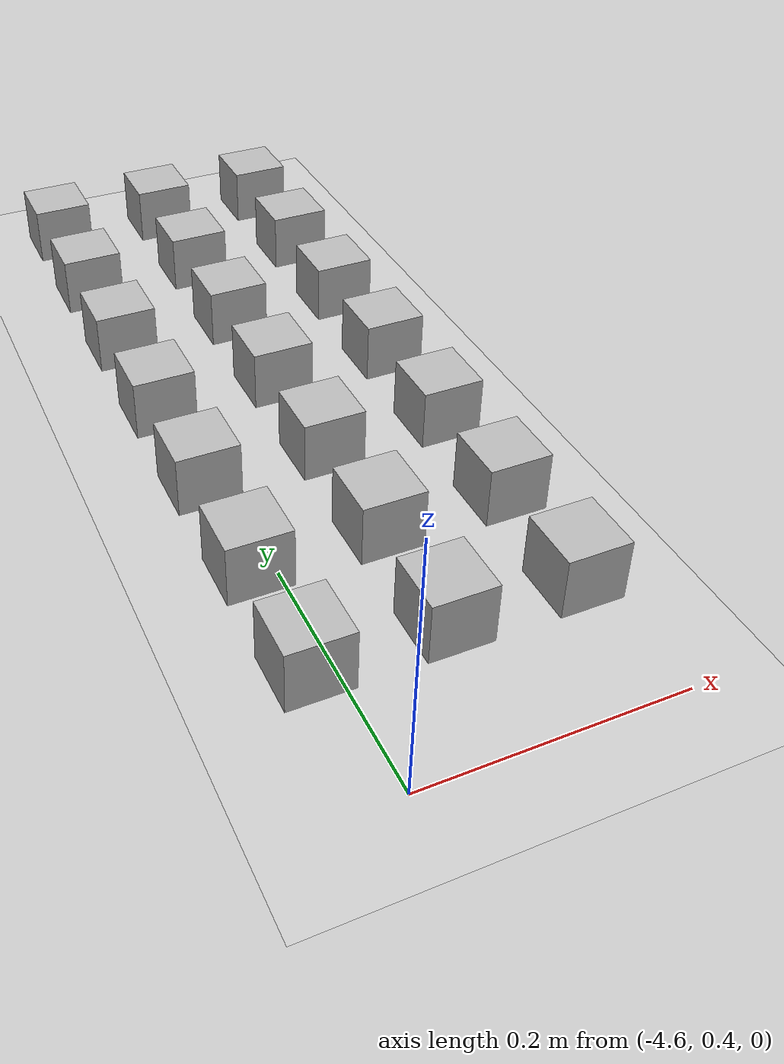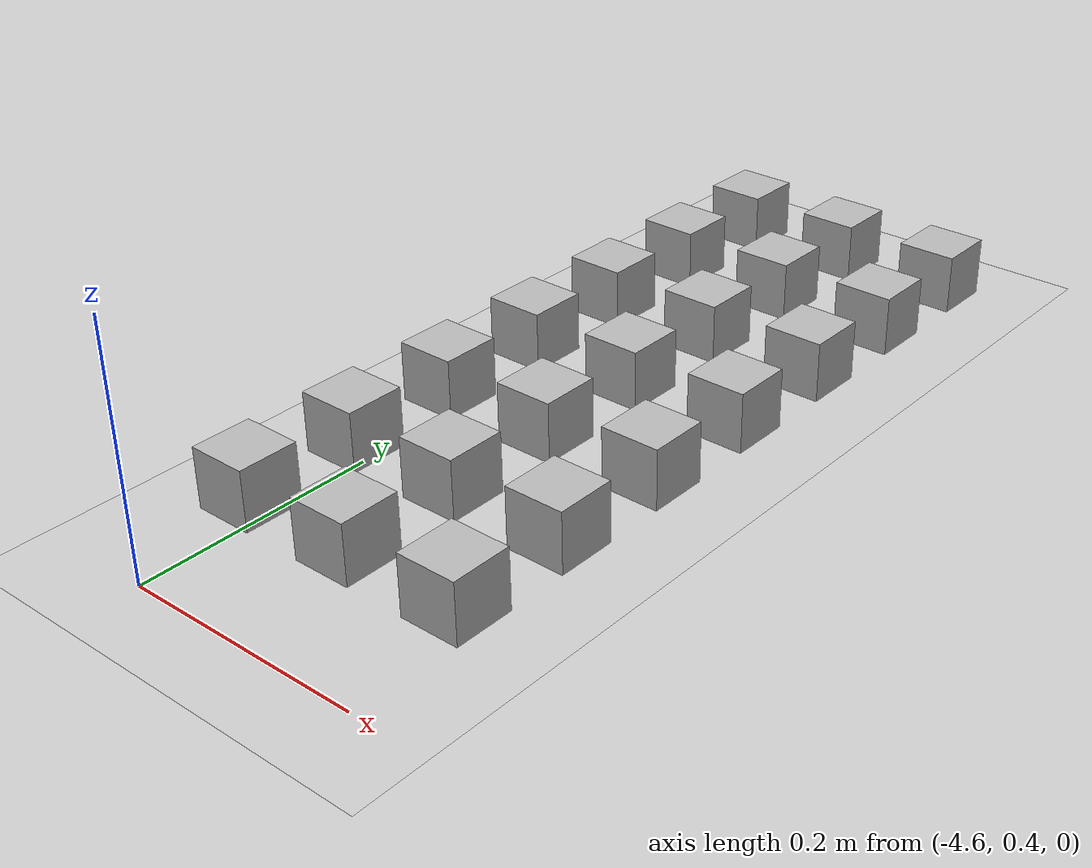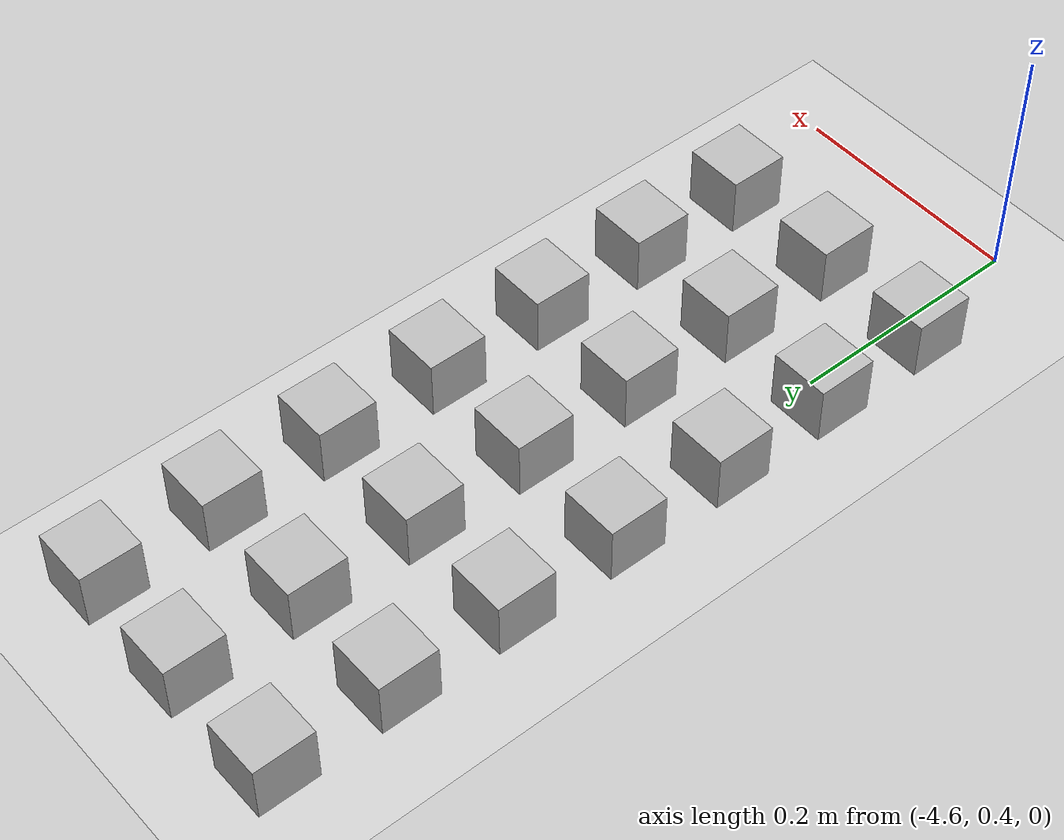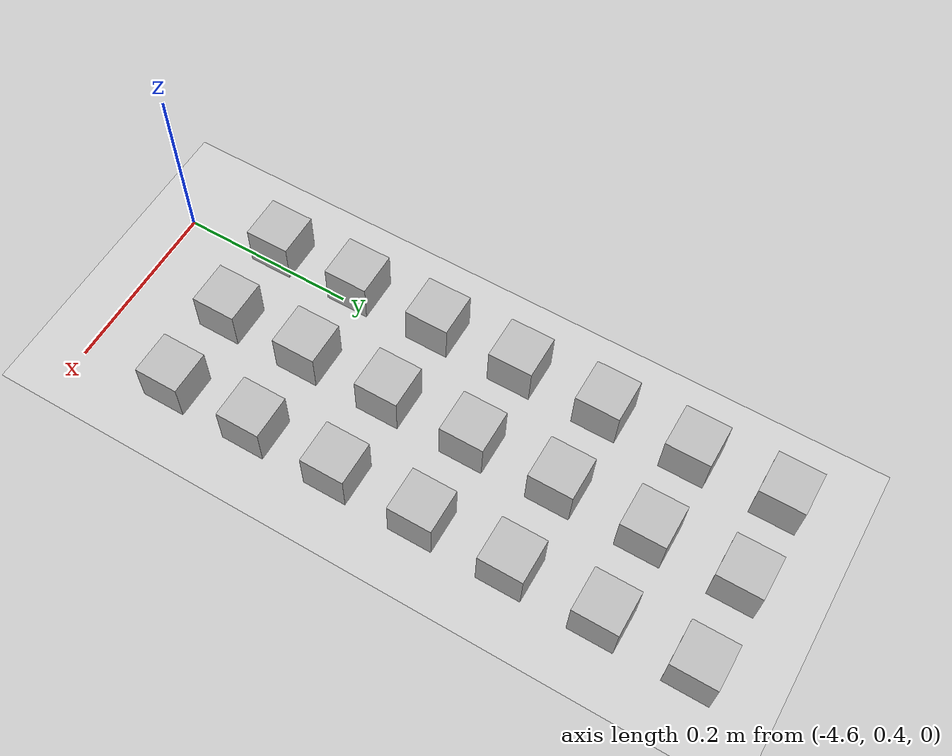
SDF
<sdf version="1.6">
 <world name="default">
  <model name="ground_plane">
   <static>1</static>
   <link name="link">
    <collision name="collision">
     <geometry><plane><normal>0 0 1</normal><size>100 100</size></plane></geometry>
     <surface><friction><ode><mu>100</mu><mu2>50</mu2></ode></friction></surface>
    </collision>
    <visual name="visual">
     <cast_shadows>0</cast_shadows>
     <geometry><plane><normal>0 0 1</normal><size>100 100</size></plane></geometry>
     <material>
      <script><uri>file://media/materials/scripts/gazebo.material</uri><name>Gazebo/Grey</name></script>
     </material>
    </visual>
   </link>
  </model>
  <model name="at0">
   <static>0</static>
   <link name="link">
    <inertial>
     <mass>0.01</mass>
     <inertia><ixx>4e-05</ixx><ixy>0</ixy><ixz>0</ixz><iyy>4e-05</iyy><iyz>0</iyz><izz>4e-05</izz></inertia>
    </inertial>
    <visual name="visual">
     <geometry><box><size>0.05 0.05 0.05</size></box></geometry>
     <material>
      <script>
       <uri>model://at0/materials/scripts</uri>
       <uri>model://at0/materials/textures</uri>
       <name>at0/Diffuse</name>
      </script>
     </material>
    </visual>
    <collision name="collision">
     <geometry><box><size>0.05 0.05 0.05</size></box></geometry>
     <surface><friction><ode><mu>0.8</mu><mu2>0.7</mu2></ode></friction></surface>
    </collision>
   </link>
   <pose>-4.61833 0.509652 0.025 0 -0 0</pose>
  </model>
  <model name="at1">
   <static>0</static>
   <link name="link">
    <inertial>
     <mass>0.01</mass>
     <inertia><ixx>4e-05</ixx><ixy>0</ixy><ixz>0</ixz><iyy>4e-05</iyy><iyz>0</iyz><izz>4e-05</izz></inertia>
    </inertial>
    <visual name="visual">
     <geometry><box><size>0.05 0.05 0.05</size></box></geometry>
     <material>
      <script>
       <uri>model://at0/materials/scripts</uri>
       <uri>model://at0/materials/textures</uri>
       <name>at0/Diffuse</name>
      </script>
     </material>
    </visual>
    <collision name="collision">
     <geometry><box><size>0.05 0.05 0.05</size></box></geometry>
     <surface><friction><ode><mu>0.8</mu><mu2>0.7</mu2></ode></friction></surface>
    </collision>
   </link>
   <pose>-4.51833 0.509652 0.025 0 -0 0</pose>
  </model>
  <model name="at2">
   <static>0</static>
   <link name="link">
    <inertial>
     <mass>0.01</mass>
     <inertia><ixx>4e-05</ixx><ixy>0</ixy><ixz>0</ixz><iyy>4e-05</iyy><iyz>0</iyz><izz>4e-05</izz></inertia>
    </inertial>
    <visual name="visual">
     <geometry><box><size>0.05 0.05 0.05</size></box></geometry>
     <material>
      <script>
       <uri>model://at0/materials/scripts</uri>
       <uri>model://at0/materials/textures</uri>
       <name>at0/Diffuse</name>
      </script>
     </material>
    </visual>
    <collision name="collision">
     <geometry><box><size>0.05 0.05 0.05</size></box></geometry>
     <surface><friction><ode><mu>0.8</mu><mu2>0.7</mu2></ode></friction></surface>
    </collision>
   </link>
   <pose>-4.41833 0.509652 0.025 0 -0 0</pose>
  </model>
  <model name="at4">
   <static>0</static>
   <link name="link">
    <inertial>
     <mass>0.01</mass>
     <inertia><ixx>4e-05</ixx><ixy>0</ixy><ixz>0</ixz><iyy>4e-05</iyy><iyz>0</iyz><izz>4e-05</izz></inertia>
    </inertial>
    <visual name="visual">
     <geometry><box><size>0.05 0.05 0.05</size></box></geometry>
     <material>
      <script>
       <uri>model://at0/materials/scripts</uri>
       <uri>model://at0/materials/textures</uri>
       <name>at0/Diffuse</name>
      </script>
     </material>
    </visual>
    <collision name="collision">
     <geometry><box><size>0.05 0.05 0.05</size></box></geometry>
     <surface><friction><ode><mu>0.8</mu><mu2>0.7</mu2></ode></friction></surface>
    </collision>
   </link>
   <pose>-4.61833 0.609652 0.025 0 -0 0</pose>
  </model>
  <model name="at5">
   <static>0</static>
   <link name="link">
    <inertial>
     <mass>0.01</mass>
     <inertia><ixx>4e-05</ixx><ixy>0</ixy><ixz>0</ixz><iyy>4e-05</iyy><iyz>0</iyz><izz>4e-05</izz></inertia>
    </inertial>
    <visual name="visual">
     <geometry><box><size>0.05 0.05 0.05</size></box></geometry>
     <material>
      <script>
       <uri>model://at0/materials/scripts</uri>
       <uri>model://at0/materials/textures</uri>
       <name>at0/Diffuse</name>
      </script>
     </material>
    </visual>
    <collision name="collision">
     <geometry><box><size>0.05 0.05 0.05</size></box></geometry>
     <surface><friction><ode><mu>0.8</mu><mu2>0.7</mu2></ode></friction></surface>
    </collision>
   </link>
   <pose>-4.51833 0.609652 0.025 0 -0 0</pose>
  </model>
  <model name="at6">
   <static>0</static>
   <link name="link">
    <inertial>
     <mass>0.01</mass>
     <inertia><ixx>4e-05</ixx><ixy>0</ixy><ixz>0</ixz><iyy>4e-05</iyy><iyz>0</iyz><izz>4e-05</izz></inertia>
    </inertial>
    <visual name="visual">
     <geometry><box><size>0.05 0.05 0.05</size></box></geometry>
     <material>
      <script>
       <uri>model://at0/materials/scripts</uri>
       <uri>model://at0/materials/textures</uri>
       <name>at0/Diffuse</name>
      </script>
     </material>
    </visual>
    <collision name="collision">
     <geometry><box><size>0.05 0.05 0.05</size></box></geometry>
     <surface><friction><ode><mu>0.8</mu><mu2>0.7</mu2></ode></friction></surface>
    </collision>
   </link>
   <pose>-4.41833 0.609652 0.025 0 -0 0</pose>
  </model>
  <model name="at8">
   <static>0</static>
   <link name="link">
    <inertial>
     <mass>0.01</mass>
     <inertia><ixx>4e-05</ixx><ixy>0</ixy><ixz>0</ixz><iyy>4e-05</iyy><iyz>0</iyz><izz>4e-05</izz></inertia>
    </inertial>
    <visual name="visual">
     <geometry><box><size>0.05 0.05 0.05</size></box></geometry>
     <material>
      <script>
       <uri>model://at0/materials/scripts</uri>
       <uri>model://at0/materials/textures</uri>
       <name>at0/Diffuse</name>
      </script>
     </material>
    </visual>
    <collision name="collision">
     <geometry><box><size>0.05 0.05 0.05</size></box></geometry>
     <surface><friction><ode><mu>0.8</mu><mu2>0.7</mu2></ode></friction></surface>
    </collision>
   </link>
   <pose>-4.61833 0.709652 0.025 0 -0 0</pose>
  </model>
  <model name="at9">
   <static>0</static>
   <link name="link">
    <inertial>
     <mass>0.01</mass>
     <inertia><ixx>4e-05</ixx><ixy>0</ixy><ixz>0</ixz><iyy>4e-05</iyy><iyz>0</iyz><izz>4e-05</izz></inertia>
    </inertial>
    <visual name="visual">
     <geometry><box><size>0.05 0.05 0.05</size></box></geometry>
     <material>
      <script>
       <uri>model://at0/materials/scripts</uri>
       <uri>model://at0/materials/textures</uri>
       <name>at0/Diffuse</name>
      </script>
     </material>
    </visual>
    <collision name="collision">
     <geometry><box><size>0.05 0.05 0.05</size></box></geometry>
     <surface><friction><ode><mu>0.8</mu><mu2>0.7</mu2></ode></friction></surface>
    </collision>
   </link>
   <pose>-4.51833 0.709652 0.025 0 -0 0</pose>
  </model>
  <model name="at10">
   <static>0</static>
   <link name="link">
    <inertial>
     <mass>0.01</mass>
     <inertia><ixx>4e-05</ixx><ixy>0</ixy><ixz>0</ixz><iyy>4e-05</iyy><iyz>0</iyz><izz>4e-05</izz></inertia>
    </inertial>
    <visual name="visual">
     <geometry><box><size>0.05 0.05 0.05</size></box></geometry>
     <material>
      <script>
       <uri>model://at0/materials/scripts</uri>
       <uri>model://at0/materials/textures</uri>
       <name>at0/Diffuse</name>
      </script>
     </material>
    </visual>
    <collision name="collision">
     <geometry><box><size>0.05 0.05 0.05</size></box></geometry>
     <surface><friction><ode><mu>0.8</mu><mu2>0.7</mu2></ode></friction></surface>
    </collision>
   </link>
   <pose>-4.41833 0.709652 0.025 0 -0 0</pose>
  </model>
  <model name="at12">
   <static>0</static>
   <link name="link">
    <inertial>
     <mass>0.01</mass>
     <inertia><ixx>4e-05</ixx><ixy>0</ixy><ixz>0</ixz><iyy>4e-05</iyy><iyz>0</iyz><izz>4e-05</izz></inertia>
    </inertial>
    <visual name="visual">
     <geometry><box><size>0.05 0.05 0.05</size></box></geometry>
     <material>
      <script>
       <uri>model://at0/materials/scripts</uri>
       <uri>model://at0/materials/textures</uri>
       <name>at0/Diffuse</name>
      </script>
     </material>
    </visual>
    <collision name="collision">
     <geometry><box><size>0.05 0.05 0.05</size></box></geometry>
     <surface><friction><ode><mu>0.8</mu><mu2>0.7</mu2></ode></friction></surface>
    </collision>
   </link>
   <pose>-4.61833 0.809652 0.025 0 -0 0</pose>
  </model>
  <model name="at13">
   <static>0</static>
   <link name="link">
    <inertial>
     <mass>0.01</mass>
     <inertia><ixx>4e-05</ixx><ixy>0</ixy><ixz>0</ixz><iyy>4e-05</iyy><iyz>0</iyz><izz>4e-05</izz></inertia>
    </inertial>
    <visual name="visual">
     <geometry><box><size>0.05 0.05 0.05</size></box></geometry>
     <material>
      <script>
       <uri>model://at0/materials/scripts</uri>
       <uri>model://at0/materials/textures</uri>
       <name>at0/Diffuse</name>
      </script>
     </material>
    </visual>
    <collision name="collision">
     <geometry><box><size>0.05 0.05 0.05</size></box></geometry>
     <surface><friction><ode><mu>0.8</mu><mu2>0.7</mu2></ode></friction></surface>
    </collision>
   </link>
   <pose>-4.51833 0.809652 0.025 0 -0 0</pose>
  </model>
  <model name="at14">
   <static>0</static>
   <link name="link">
    <inertial>
     <mass>0.01</mass>
     <inertia><ixx>4e-05</ixx><ixy>0</ixy><ixz>0</ixz><iyy>4e-05</iyy><iyz>0</iyz><izz>4e-05</izz></inertia>
    </inertial>
    <visual name="visual">
     <geometry><box><size>0.05 0.05 0.05</size></box></geometry>
     <material>
      <script>
       <uri>model://at0/materials/scripts</uri>
       <uri>model://at0/materials/textures</uri>
       <name>at0/Diffuse</name>
      </script>
     </material>
    </visual>
    <collision name="collision">
     <geometry><box><size>0.05 0.05 0.05</size></box></geometry>
     <surface><friction><ode><mu>0.8</mu><mu2>0.7</mu2></ode></friction></surface>
    </collision>
   </link>
   <pose>-4.41833 0.809652 0.025 0 -0 0</pose>
  </model>
  <model name="at16">
   <static>0</static>
   <link name="link">
    <inertial>
     <mass>0.01</mass>
     <inertia><ixx>4e-05</ixx><ixy>0</ixy><ixz>0</ixz><iyy>4e-05</iyy><iyz>0</iyz><izz>4e-05</izz></inertia>
    </inertial>
    <visual name="visual">
     <geometry><box><size>0.05 0.05 0.05</size></box></geometry>
     <material>
      <script>
       <uri>model://at0/materials/scripts</uri>
       <uri>model://at0/materials/textures</uri>
       <name>at0/Diffuse</name>
      </script>
     </material>
    </visual>
    <collision name="collision">
     <geometry><box><size>0.05 0.05 0.05</size></box></geometry>
     <surface><friction><ode><mu>0.8</mu><mu2>0.7</mu2></ode></friction></surface>
    </collision>
   </link>
   <pose>-4.61833 0.909652 0.025 0 -0 0</pose>
  </model>
  <model name="at17">
   <static>0</static>
   <link name="link">
    <inertial>
     <mass>0.01</mass>
     <inertia><ixx>4e-05</ixx><ixy>0</ixy><ixz>0</ixz><iyy>4e-05</iyy><iyz>0</iyz><izz>4e-05</izz></inertia>
    </inertial>
    <visual name="visual">
     <geometry><box><size>0.05 0.05 0.05</size></box></geometry>
     <material>
      <script>
       <uri>model://at0/materials/scripts</uri>
       <uri>model://at0/materials/textures</uri>
       <name>at0/Diffuse</name>
      </script>
     </material>
    </visual>
    <collision name="collision">
     <geometry><box><size>0.05 0.05 0.05</size></box></geometry>
     <surface><friction><ode><mu>0.8</mu><mu2>0.7</mu2></ode></friction></surface>
    </collision>
   </link>
   <pose>-4.51833 0.909652 0.025 0 -0 0</pose>
  </model>
  <model name="at18">
   <static>0</static>
   <link name="link">
    <inertial>
     <mass>0.01</mass>
     <inertia><ixx>4e-05</ixx><ixy>0</ixy><ixz>0</ixz><iyy>4e-05</iyy><iyz>0</iyz><izz>4e-05</izz></inertia>
    </inertial>
    <visual name="visual">
     <geometry><box><size>0.05 0.05 0.05</size></box></geometry>
     <material>
      <script>
       <uri>model://at0/materials/scripts</uri>
       <uri>model://at0/materials/textures</uri>
       <name>at0/Diffuse</name>
      </script>
     </material>
    </visual>
    <collision name="collision">
     <geometry><box><size>0.05 0.05 0.05</size></box></geometry>
     <surface><friction><ode><mu>0.8</mu><mu2>0.7</mu2></ode></friction></surface>
    </collision>
   </link>
   <pose>-4.41833 0.909652 0.025 0 -0 0</pose>
  </model>
  <model name="at20">
   <static>0</static>
   <link name="link">
    <inertial>
     <mass>0.01</mass>
     <inertia><ixx>4e-05</ixx><ixy>0</ixy><ixz>0</ixz><iyy>4e-05</iyy><iyz>0</iyz><izz>4e-05</izz></inertia>
    </inertial>
    <visual name="visual">
     <geometry><box><size>0.05 0.05 0.05</size></box></geometry>
     <material>
      <script>
       <uri>model://at0/materials/scripts</uri>
       <uri>model://at0/materials/textures</uri>
       <name>at0/Diffuse</name>
      </script>
     </material>
    </visual>
    <collision name="collision">
     <geometry><box><size>0.05 0.05 0.05</size></box></geometry>
     <surface><friction><ode><mu>0.8</mu><mu2>0.7</mu2></ode></friction></surface>
    </collision>
   </link>
   <pose>-4.61833 1.00965 0.025 0 -0 0</pose>
  </model>
  <model name="at21">
   <static>0</static>
   <link name="link">
    <inertial>
     <mass>0.01</mass>
     <inertia><ixx>4e-05</ixx><ixy>0</ixy><ixz>0</ixz><iyy>4e-05</iyy><iyz>0</iyz><izz>4e-05</izz></inertia>
    </inertial>
    <visual name="visual">
     <geometry><box><size>0.05 0.05 0.05</size></box></geometry>
     <material>
      <script>
       <uri>model://at0/materials/scripts</uri>
       <uri>model://at0/materials/textures</uri>
       <name>at0/Diffuse</name>
      </script>
     </material>
    </visual>
    <collision name="collision">
     <geometry><box><size>0.05 0.05 0.05</size></box></geometry>
     <surface><friction><ode><mu>0.8</mu><mu2>0.7</mu2></ode></friction></surface>
    </collision>
   </link>
   <pose>-4.51833 1.00965 0.025 0 -0 0</pose>
  </model>
  <model name="at22">
   <static>0</static>
   <link name="link">
    <inertial>
     <mass>0.01</mass>
     <inertia><ixx>4e-05</ixx><ixy>0</ixy><ixz>0</ixz><iyy>4e-05</iyy><iyz>0</iyz><izz>4e-05</izz></inertia>
    </inertial>
    <visual name="visual">
     <geometry><box><size>0.05 0.05 0.05</size></box></geometry>
     <material>
      <script>
       <uri>model://at0/materials/scripts</uri>
       <uri>model://at0/materials/textures</uri>
       <name>at0/Diffuse</name>
      </script>
     </material>
    </visual>
    <collision name="collision">
     <geometry><box><size>0.05 0.05 0.05</size></box></geometry>
     <surface><friction><ode><mu>0.8</mu><mu2>0.7</mu2></ode></friction></surface>
    </collision>
   </link>
   <pose>-4.41833 1.00965 0.025 0 -0 0</pose>
  </model>
  <model name="at24">
   <static>0</static>
   <link name="link">
    <inertial>
     <mass>0.01</mass>
     <inertia><ixx>4e-05</ixx><ixy>0</ixy><ixz>0</ixz><iyy>4e-05</iyy><iyz>0</iyz><izz>4e-05</izz></inertia>
    </inertial>
    <visual name="visual">
     <geometry><box><size>0.05 0.05 0.05</size></box></geometry>
     <material>
      <script>
       <uri>model://at0/materials/scripts</uri>
       <uri>model://at0/materials/textures</uri>
       <name>at0/Diffuse</name>
      </script>
     </material>
    </visual>
    <collision name="collision">
     <geometry><box><size>0.05 0.05 0.05</size></box></geometry>
     <surface><friction><ode><mu>0.8</mu><mu2>0.7</mu2></ode></friction></surface>
    </collision>
   </link>
   <pose>-4.61833 1.10965 0.025 0 -0 0</pose>
  </model>
  <model name="at25">
   <static>0</static>
   <link name="link">
    <inertial>
     <mass>0.01</mass>
     <inertia><ixx>4e-05</ixx><ixy>0</ixy><ixz>0</ixz><iyy>4e-05</iyy><iyz>0</iyz><izz>4e-05</izz></inertia>
    </inertial>
    <visual name="visual">
     <geometry><box><size>0.05 0.05 0.05</size></box></geometry>
     <material>
      <script>
       <uri>model://at0/materials/scripts</uri>
       <uri>model://at0/materials/textures</uri>
       <name>at0/Diffuse</name>
      </script>
     </material>
    </visual>
    <collision name="collision">
     <geometry><box><size>0.05 0.05 0.05</size></box></geometry>
     <surface><friction><ode><mu>0.8</mu><mu2>0.7</mu2></ode></friction></surface>
    </collision>
   </link>
   <pose>-4.51833 1.10965 0.025 0 -0 0</pose>
  </model>
  <model name="at26">
   <static>0</static>
   <link name="link">
    <inertial>
     <mass>0.01</mass>
     <inertia><ixx>4e-05</ixx><ixy>0</ixy><ixz>0</ixz><iyy>4e-05</iyy><iyz>0</iyz><izz>4e-05</izz></inertia>
    </inertial>
    <visual name="visual">
     <geometry><box><size>0.05 0.05 0.05</size></box></geometry>
     <material>
      <script>
       <uri>model://at0/materials/scripts</uri>
       <uri>model://at0/materials/textures</uri>
       <name>at0/Diffuse</name>
      </script>
     </material>
    </visual>
    <collision name="collision">
     <geometry><box><size>0.05 0.05 0.05</size></box></geometry>
     <surface><friction><ode><mu>0.8</mu><mu2>0.7</mu2></ode></friction></surface>
    </collision>
   </link>
   <pose>-4.41833 1.10965 0.025 0 -0 0</pose>
  </model>
  <model name="Barrier Prelim Round">
   <static>1</static>
   <link name="link">
    <inertial>
     <mass>1</mass>
     <inertia><ixx>0.083</ixx><ixy>0</ixy><ixz>0</ixz><iyy>0</iyy><iyz>0</iyz><izz>0.083</izz></inertia>
    </inertial>
    <collision name="collision">
     <geometry><box><size>0.05 15 0.33</size></box></geometry>
     <surface><friction><ode><mu>1</mu><mu2>1</mu2><slip1>0</slip1><slip2>0</slip2></ode></friction></surface>
    </collision>
    <visual name="visual">
     <geometry><box><size>0.05 15 0.33</size></box></geometry>
     <material>
      <ambient>255 131 0 1</ambient>
      <diffuse>255 131 0 1</diffuse>
      <specular>0.1 0.1 0.1 1</specular>
      <emissive>0 0 0 0</emissive>
     </material>
    </visual>
   </link>
   <pose>-7.06372 0.026706 0 0 -0 0</pose>
  </model>
 </world>
</sdf>
